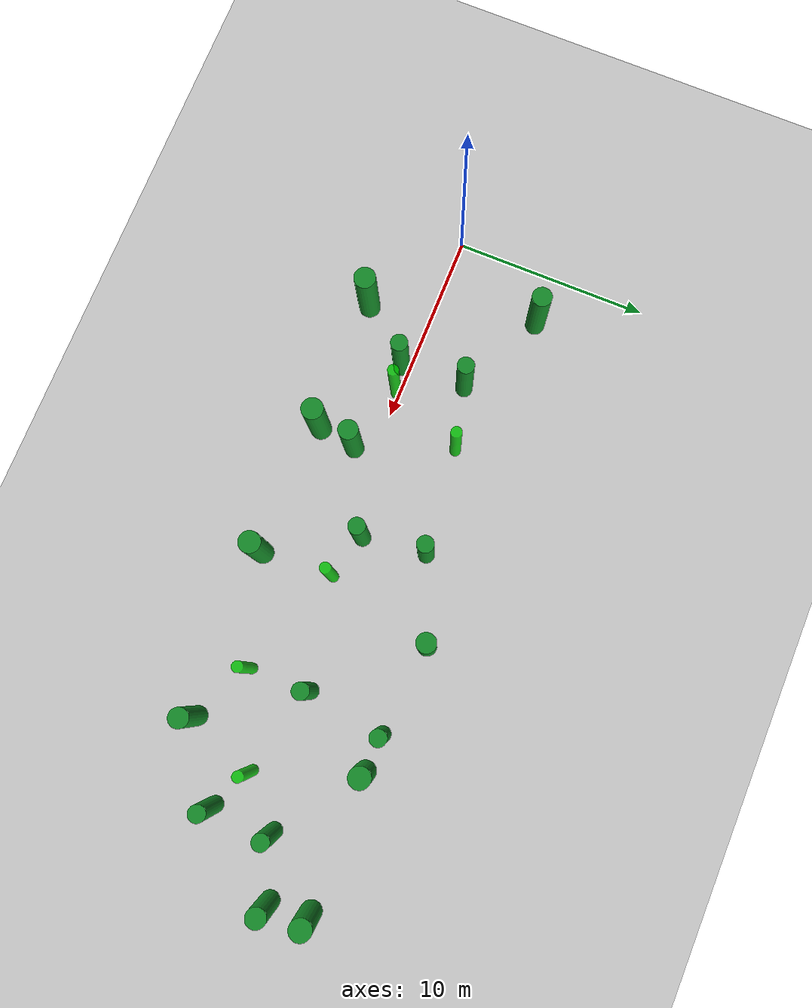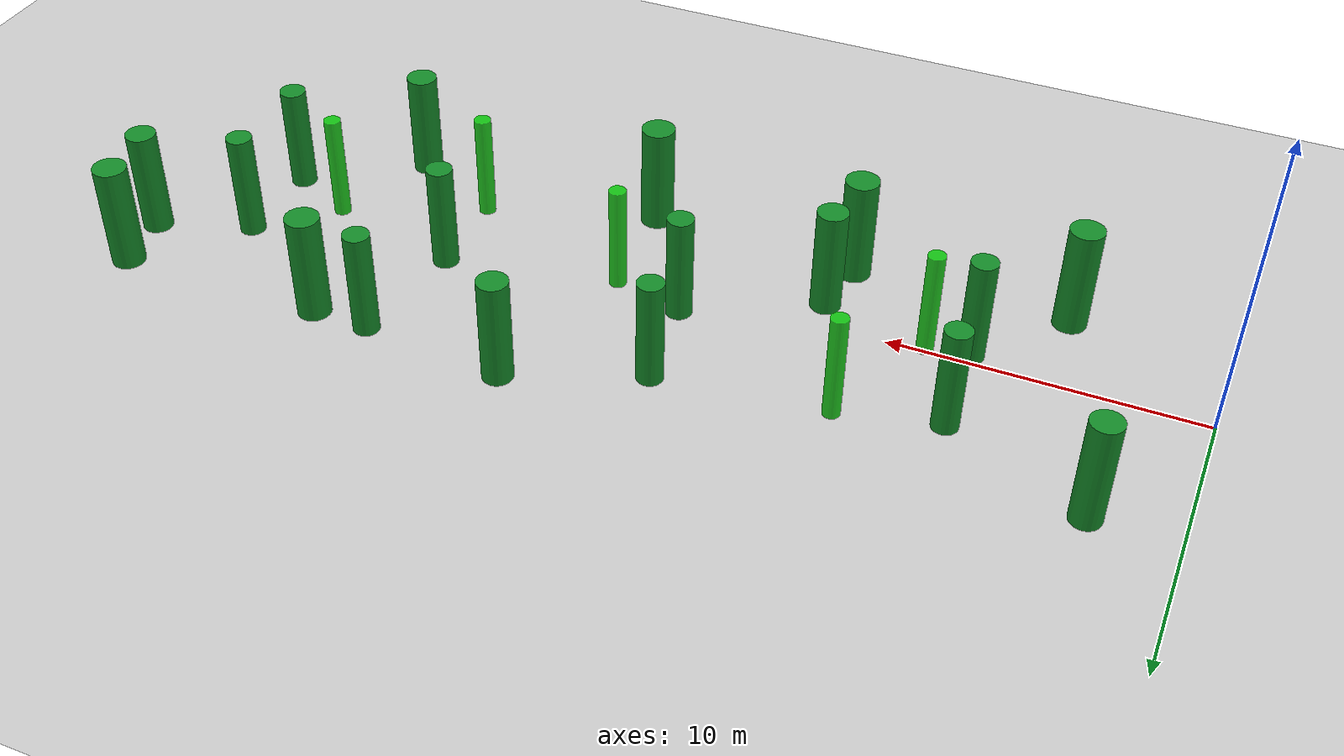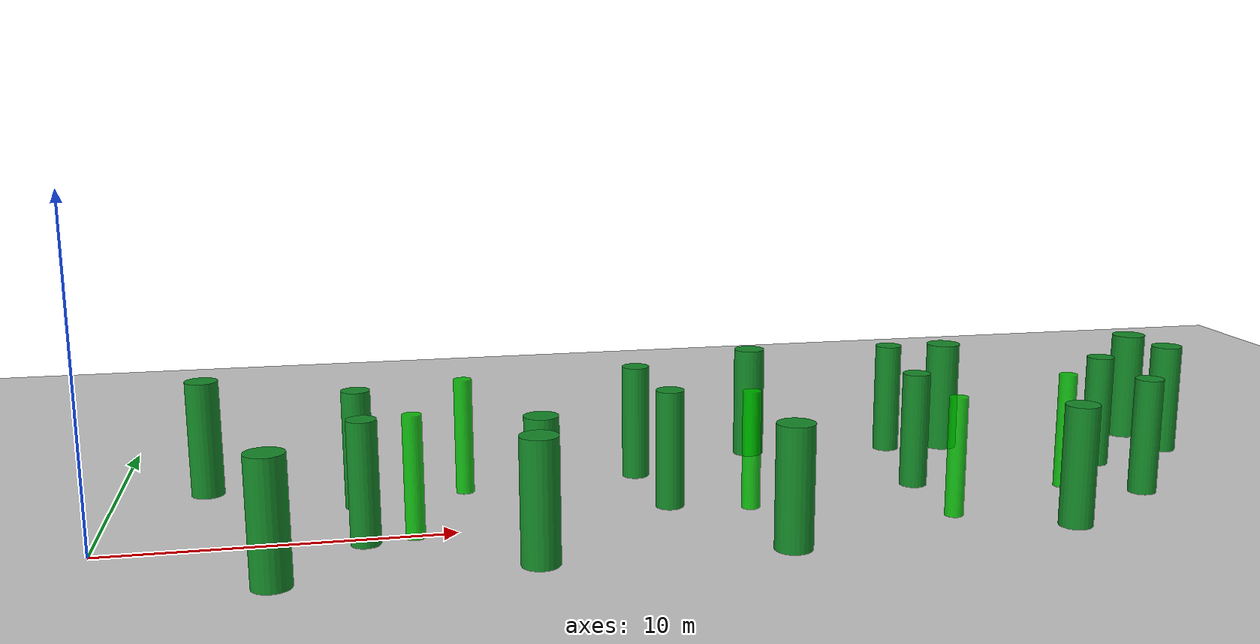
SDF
<sdf version="1.6">
 <world name="long_cylinder_forest">
  <include><uri>model://sun</uri></include>
  <include><uri>model://ground_plane</uri></include>
  <model name="long_forest_cylinder_08">
   <static>true</static>
   <pose>7.280 3.000 1.800 0 0 0</pose>
   <link name="link">
    <collision name="collision">
     <geometry><cylinder><radius>0.430</radius><length>3.600</length></cylinder></geometry>
    </collision>
    <visual name="visual">
     <geometry><cylinder><radius>0.430</radius><length>3.600</length></cylinder></geometry>
     <material><ambient>0.08 0.55 0.16 0.92</ambient><diffuse>0.08 0.55 0.16 0.92</diffuse></material>
    </visual>
   </link>
  </model>
  <model name="long_forest_cylinder_09">
   <static>true</static>
   <pose>7.420 -0.400 1.800 0 0 0</pose>
   <link name="link">
    <collision name="collision">
     <geometry><cylinder><radius>0.430</radius><length>3.600</length></cylinder></geometry>
    </collision>
    <visual name="visual">
     <geometry><cylinder><radius>0.430</radius><length>3.600</length></cylinder></geometry>
     <material><ambient>0.08 0.55 0.16 0.92</ambient><diffuse>0.08 0.55 0.16 0.92</diffuse></material>
    </visual>
   </link>
  </model>
  <model name="long_forest_cylinder_10">
   <static>true</static>
   <pose>16.030 4.450 1.800 0 0 0</pose>
   <link name="link">
    <collision name="collision">
     <geometry><cylinder><radius>0.430</radius><length>3.600</length></cylinder></geometry>
    </collision>
    <visual name="visual">
     <geometry><cylinder><radius>0.430</radius><length>3.600</length></cylinder></geometry>
     <material><ambient>0.08 0.55 0.16 0.92</ambient><diffuse>0.08 0.55 0.16 0.92</diffuse></material>
    </visual>
   </link>
  </model>
  <model name="long_forest_cylinder_11">
   <static>true</static>
   <pose>16.440 1.150 1.800 0 0 0</pose>
   <link name="link">
    <collision name="collision">
     <geometry><cylinder><radius>0.430</radius><length>3.600</length></cylinder></geometry>
    </collision>
    <visual name="visual">
     <geometry><cylinder><radius>0.430</radius><length>3.600</length></cylinder></geometry>
     <material><ambient>0.08 0.55 0.16 0.92</ambient><diffuse>0.08 0.55 0.16 0.92</diffuse></material>
    </visual>
   </link>
  </model>
  <model name="long_forest_cylinder_12">
   <static>true</static>
   <pose>25.060 5.800 1.800 0 0 0</pose>
   <link name="link">
    <collision name="collision">
     <geometry><cylinder><radius>0.430</radius><length>3.600</length></cylinder></geometry>
    </collision>
    <visual name="visual">
     <geometry><cylinder><radius>0.430</radius><length>3.600</length></cylinder></geometry>
     <material><ambient>0.08 0.55 0.16 0.92</ambient><diffuse>0.08 0.55 0.16 0.92</diffuse></material>
    </visual>
   </link>
  </model>
  <model name="long_forest_cylinder_13">
   <static>true</static>
   <pose>24.440 1.710 1.800 0 0 0</pose>
   <link name="link">
    <collision name="collision">
     <geometry><cylinder><radius>0.430</radius><length>3.600</length></cylinder></geometry>
    </collision>
    <visual name="visual">
     <geometry><cylinder><radius>0.430</radius><length>3.600</length></cylinder></geometry>
     <material><ambient>0.08 0.55 0.16 0.92</ambient><diffuse>0.08 0.55 0.16 0.92</diffuse></material>
    </visual>
   </link>
  </model>
  <model name="long_forest_cylinder_14">
   <static>true</static>
   <pose>31.230 2.690 1.800 0 0 0</pose>
   <link name="link">
    <collision name="collision">
     <geometry><cylinder><radius>0.430</radius><length>3.600</length></cylinder></geometry>
    </collision>
    <visual name="visual">
     <geometry><cylinder><radius>0.430</radius><length>3.600</length></cylinder></geometry>
     <material><ambient>0.08 0.55 0.16 0.92</ambient><diffuse>0.08 0.55 0.16 0.92</diffuse></material>
    </visual>
   </link>
  </model>
  <model name="long_forest_cylinder_15">
   <static>true</static>
   <pose>31.160 -0.450 1.800 0 0 0</pose>
   <link name="link">
    <collision name="collision">
     <geometry><cylinder><radius>0.430</radius><length>3.600</length></cylinder></geometry>
    </collision>
    <visual name="visual">
     <geometry><cylinder><radius>0.430</radius><length>3.600</length></cylinder></geometry>
     <material><ambient>0.08 0.55 0.16 0.92</ambient><diffuse>0.08 0.55 0.16 0.92</diffuse></material>
    </visual>
   </link>
  </model>
  <model name="long_forest_cylinder_19">
   <static>true</static>
   <pose>2.690 5.150 1.800 0 0 0</pose>
   <link name="link">
    <collision name="collision">
     <geometry><cylinder><radius>0.500</radius><length>3.600</length></cylinder></geometry>
    </collision>
    <visual name="visual">
     <geometry><cylinder><radius>0.500</radius><length>3.600</length></cylinder></geometry>
     <material><ambient>0.08 0.55 0.16 0.92</ambient><diffuse>0.08 0.55 0.16 0.92</diffuse></material>
    </visual>
   </link>
  </model>
  <model name="long_forest_cylinder_20">
   <static>true</static>
   <pose>12.310 -1.020 1.800 0 0 0</pose>
   <link name="link">
    <collision name="collision">
     <geometry><cylinder><radius>0.500</radius><length>3.600</length></cylinder></geometry>
    </collision>
    <visual name="visual">
     <geometry><cylinder><radius>0.500</radius><length>3.600</length></cylinder></geometry>
     <material><ambient>0.08 0.55 0.16 0.92</ambient><diffuse>0.08 0.55 0.16 0.92</diffuse></material>
    </visual>
   </link>
  </model>
  <model name="long_forest_cylinder_21">
   <static>true</static>
   <pose>20.270 6.210 1.800 0 0 0</pose>
   <link name="link">
    <collision name="collision">
     <geometry><cylinder><radius>0.500</radius><length>3.600</length></cylinder></geometry>
    </collision>
    <visual name="visual">
     <geometry><cylinder><radius>0.500</radius><length>3.600</length></cylinder></geometry>
     <material><ambient>0.08 0.55 0.16 0.92</ambient><diffuse>0.08 0.55 0.16 0.92</diffuse></material>
    </visual>
   </link>
  </model>
  <model name="long_forest_cylinder_22">
   <static>true</static>
   <pose>27.610 -2.950 1.800 0 0 0</pose>
   <link name="link">
    <collision name="collision">
     <geometry><cylinder><radius>0.500</radius><length>3.600</length></cylinder></geometry>
    </collision>
    <visual name="visual">
     <geometry><cylinder><radius>0.500</radius><length>3.600</length></cylinder></geometry>
     <material><ambient>0.08 0.55 0.16 0.92</ambient><diffuse>0.08 0.55 0.16 0.92</diffuse></material>
    </visual>
   </link>
  </model>
  <model name="long_forest_cylinder_23">
   <static>true</static>
   <pose>34.270 3.780 1.800 0 0 0</pose>
   <link name="link">
    <collision name="collision">
     <geometry><cylinder><radius>0.500</radius><length>3.600</length></cylinder></geometry>
    </collision>
    <visual name="visual">
     <geometry><cylinder><radius>0.500</radius><length>3.600</length></cylinder></geometry>
     <material><ambient>0.08 0.55 0.16 0.92</ambient><diffuse>0.08 0.55 0.16 0.92</diffuse></material>
    </visual>
   </link>
  </model>
  <model name="long_forest_cylinder_31">
   <static>true</static>
   <pose>5.000 -3.200 1.800 0 0 0</pose>
   <link name="link">
    <collision name="collision">
     <geometry><cylinder><radius>0.550</radius><length>3.600</length></cylinder></geometry>
    </collision>
    <visual name="visual">
     <geometry><cylinder><radius>0.550</radius><length>3.600</length></cylinder></geometry>
     <material><ambient>0.08 0.55 0.16 0.92</ambient><diffuse>0.08 0.55 0.16 0.92</diffuse></material>
    </visual>
   </link>
  </model>
  <model name="long_forest_cylinder_32">
   <static>true</static>
   <pose>12.000 -3.000 1.800 0 0 0</pose>
   <link name="link">
    <collision name="collision">
     <geometry><cylinder><radius>0.550</radius><length>3.600</length></cylinder></geometry>
    </collision>
    <visual name="visual">
     <geometry><cylinder><radius>0.550</radius><length>3.600</length></cylinder></geometry>
     <material><ambient>0.08 0.55 0.16 0.92</ambient><diffuse>0.08 0.55 0.16 0.92</diffuse></material>
    </visual>
   </link>
  </model>
  <model name="long_forest_cylinder_33">
   <static>true</static>
   <pose>19.000 -3.200 1.800 0 0 0</pose>
   <link name="link">
    <collision name="collision">
     <geometry><cylinder><radius>0.550</radius><length>3.600</length></cylinder></geometry>
    </collision>
    <visual name="visual">
     <geometry><cylinder><radius>0.550</radius><length>3.600</length></cylinder></geometry>
     <material><ambient>0.08 0.55 0.16 0.92</ambient><diffuse>0.08 0.55 0.16 0.92</diffuse></material>
    </visual>
   </link>
  </model>
  <model name="long_forest_cylinder_34">
   <static>true</static>
   <pose>27.000 5.700 1.800 0 0 0</pose>
   <link name="link">
    <collision name="collision">
     <geometry><cylinder><radius>0.550</radius><length>3.600</length></cylinder></geometry>
    </collision>
    <visual name="visual">
     <geometry><cylinder><radius>0.550</radius><length>3.600</length></cylinder></geometry>
     <material><ambient>0.08 0.55 0.16 0.92</ambient><diffuse>0.08 0.55 0.16 0.92</diffuse></material>
    </visual>
   </link>
  </model>
  <model name="long_forest_cylinder_35">
   <static>true</static>
   <pose>34.000 5.800 1.800 0 0 0</pose>
   <link name="link">
    <collision name="collision">
     <geometry><cylinder><radius>0.550</radius><length>3.600</length></cylinder></geometry>
    </collision>
    <visual name="visual">
     <geometry><cylinder><radius>0.550</radius><length>3.600</length></cylinder></geometry>
     <material><ambient>0.08 0.55 0.16 0.92</ambient><diffuse>0.08 0.55 0.16 0.92</diffuse></material>
    </visual>
   </link>
  </model>
  <model name="long_forest_moving_1">
   <static>false</static>
   <pose>8.800 -0.150 1.800 0 0 0</pose>
   <link name="link">
    <gravity>false</gravity>
    <inertial>
     <mass>1.0</mass>
     <inertia><ixx>0.1</ixx><ixy>0.0</ixy><ixz>0.0</ixz><iyy>0.1</iyy><iyz>0.0</iyz><izz>0.1</izz></inertia>
    </inertial>
    <collision name="collision">
     <geometry><cylinder><radius>0.280</radius><length>3.600</length></cylinder></geometry>
    </collision>
    <visual name="visual">
     <geometry><cylinder><radius>0.280</radius><length>3.600</length></cylinder></geometry>
     <material><ambient>0 0.8 0 0.85</ambient><diffuse>0 0.8 0 0.85</diffuse></material>
    </visual>
   </link>
  </model>
  <model name="long_forest_moving_2">
   <static>false</static>
   <pose>24.500 -1.400 1.800 0 0 0</pose>
   <link name="link">
    <gravity>false</gravity>
    <inertial>
     <mass>1.0</mass>
     <inertia><ixx>0.1</ixx><ixy>0.0</ixy><ixz>0.0</ixz><iyy>0.1</iyy><iyz>0.0</iyz><izz>0.1</izz></inertia>
    </inertial>
    <collision name="collision">
     <geometry><cylinder><radius>0.280</radius><length>3.600</length></cylinder></geometry>
    </collision>
    <visual name="visual">
     <geometry><cylinder><radius>0.280</radius><length>3.600</length></cylinder></geometry>
     <material><ambient>0 0.8 0 0.85</ambient><diffuse>0 0.8 0 0.85</diffuse></material>
    </visual>
   </link>
  </model>
  <model name="long_forest_moving_5">
   <static>false</static>
   <pose>18.800 0.550 1.800 0 0 0</pose>
   <link name="link">
    <gravity>false</gravity>
    <inertial>
     <mass>1.0</mass>
     <inertia><ixx>0.1</ixx><ixy>0.0</ixy><ixz>0.0</ixz><iyy>0.1</iyy><iyz>0.0</iyz><izz>0.1</izz></inertia>
    </inertial>
    <collision name="collision">
     <geometry><cylinder><radius>0.280</radius><length>3.600</length></cylinder></geometry>
    </collision>
    <visual name="visual">
     <geometry><cylinder><radius>0.280</radius><length>3.600</length></cylinder></geometry>
     <material><ambient>0 0.8 0 0.85</ambient><diffuse>0 0.8 0 0.85</diffuse></material>
    </visual>
   </link>
  </model>
  <model name="long_forest_moving_8">
   <static>false</static>
   <pose>10.500 3.800 1.800 0 0 0</pose>
   <link name="link">
    <gravity>false</gravity>
    <inertial>
     <mass>1.0</mass>
     <inertia><ixx>0.1</ixx><ixy>0.0</ixy><ixz>0.0</ixz><iyy>0.1</iyy><iyz>0.0</iyz><izz>0.1</izz></inertia>
    </inertial>
    <collision name="collision">
     <geometry><cylinder><radius>0.280</radius><length>3.600</length></cylinder></geometry>
    </collision>
    <visual name="visual">
     <geometry><cylinder><radius>0.280</radius><length>3.600</length></cylinder></geometry>
     <material><ambient>0 0.8 0 0.85</ambient><diffuse>0 0.8 0 0.85</diffuse></material>
    </visual>
   </link>
  </model>
  <model name="long_forest_moving_9">
   <static>false</static>
   <pose>29.000 0.600 1.800 0 0 0</pose>
   <link name="link">
    <gravity>false</gravity>
    <inertial>
     <mass>1.0</mass>
     <inertia><ixx>0.1</ixx><ixy>0.0</ixy><ixz>0.0</ixz><iyy>0.1</iyy><iyz>0.0</iyz><izz>0.1</izz></inertia>
    </inertial>
    <collision name="collision">
     <geometry><cylinder><radius>0.280</radius><length>3.600</length></cylinder></geometry>
    </collision>
    <visual name="visual">
     <geometry><cylinder><radius>0.280</radius><length>3.600</length></cylinder></geometry>
     <material><ambient>0 0.8 0 0.85</ambient><diffuse>0 0.8 0 0.85</diffuse></material>
    </visual>
   </link>
  </model>
 </world>
</sdf>
